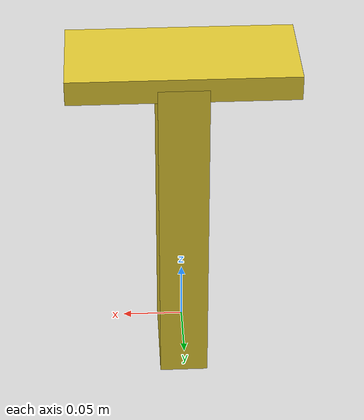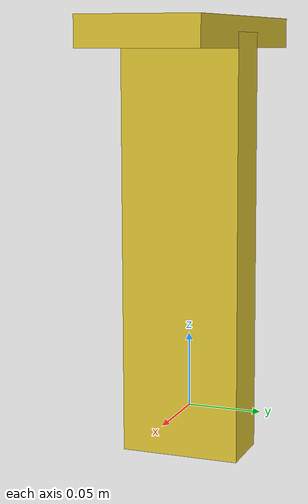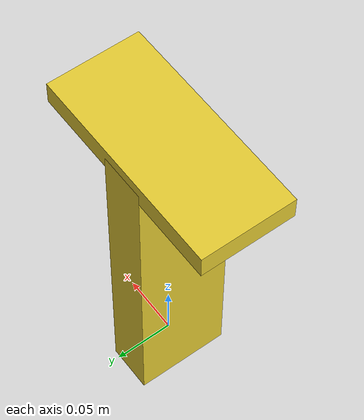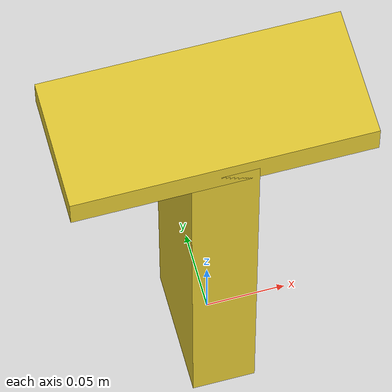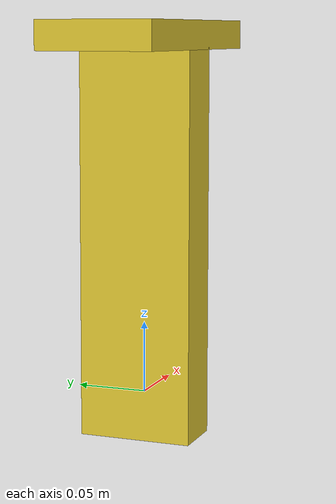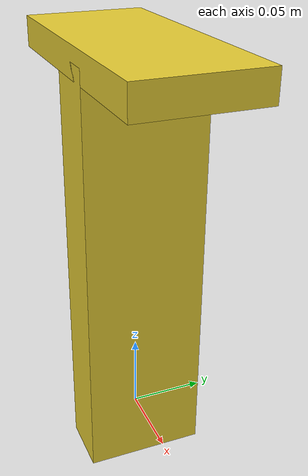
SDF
<sdf version="1.6">
    <model name="hook2">
        <allow_auto_disable>true</allow_auto_disable>
        <link name="link_1">
            <kinematic>true</kinematic>
            <pose>0 0 0.11 0 0 0 0</pose>
            <inertial>
                <inertia>
                    <ixx>0.01766</ixx>
                    <ixy>0</ixy>
                    <ixz>0</ixz>
                    <iyy>0.01933</iyy>
                    <iyz>0</iyz>
                    <izz>0.00433</izz>
                </inertia>
                <mass>10.0</mass>
            </inertial>
            <visual name="visual1">
                <geometry>
                    <box>
                        <size>0.04 0.08 0.28</size>
                    </box>
                </geometry>
                    <material>
                    <ambient>0.9 0.8 0.2 1.0</ambient>
                    <diffuse>0.9 0.8 0.2 1.0</diffuse>
                    </material>
            </visual>
            <visual name="visual2">
                <pose>0.0 0 0.14 0 0 0 0</pose>
                <geometry>
                    <box>
                        <size>0.18 0.08 0.02</size>
                    </box>
                </geometry>
                    <material>
                    <ambient>0.9 0.8 0.2 1.0</ambient>
                    <diffuse>0.9 0.8 0.2 1.0</diffuse>
                    </material>
            </visual>
            <collision name="box_collision1">
                <geometry>
                    <box>
                        <size>0.04 0.08 0.28</size>
                    </box>
                </geometry>
                <surface>
                    <friction>
                        <ode>
                            <mu>1.0</mu>
                            <mu2>1.0</mu2>
                        </ode>
                    </friction>
                    <contact>
                        <ode>
                            <kp>1e15</kp>
                            <kd>1e12</kd>
                        </ode>
                    </contact>
                </surface>
            </collision>
            <collision name="box_collision2">
                <pose>0.0 0 0.14 0 0 0 0</pose>
                <geometry>
                    <box>
                        <size>0.18 0.08 0.02</size>
                    </box>
                </geometry>
                <surface>
                    <friction>
                        <ode>
                            <mu>1.0</mu>
                            <mu2>1.0</mu2>
                        </ode>
                    </friction>
                    <contact>
                        <ode>
                            <kp>1e15</kp>
                            <kd>1e12</kd>
                        </ode>
                    </contact>
                </surface>
            </collision>
        </link>
    </model>
</sdf>
